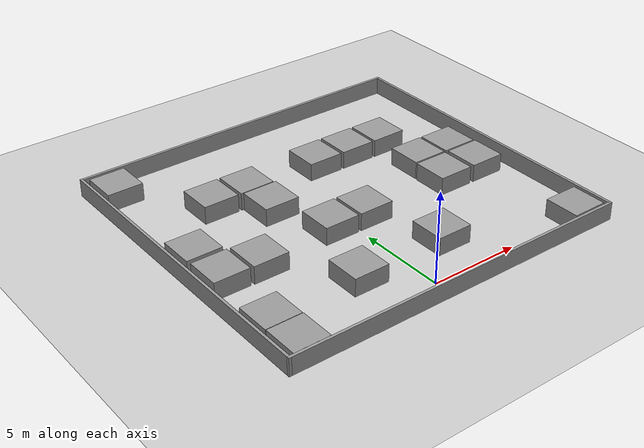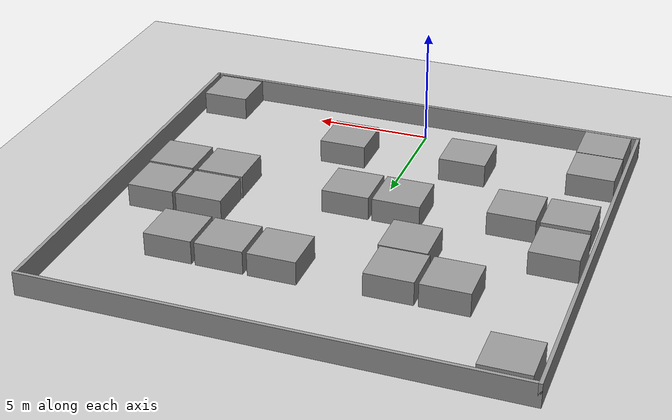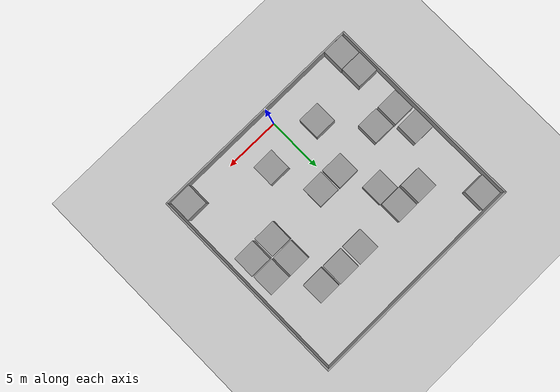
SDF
<sdf version="1.6">
 <world name="default">
  <light name="sun" type="directional">
   <pose>0 0 10 0 -0 0</pose>
   <diffuse>0.8 0.8 0.8 1</diffuse>
   <specular>0.2 0.2 0.2 1</specular>
   <attenuation>
    <range>1000</range>
    <constant>0.9</constant>
    <linear>0.01</linear>
    <quadratic>0.001</quadratic>
   </attenuation>
   <direction>-0.5 0.1 -0.9</direction>
  </light>
  <model name="ground_plane">
   <static>1</static>
   <link name="link">
    <collision name="collision">
     <geometry><plane><normal>0 0 1</normal><size>100 100</size></plane></geometry>
     <surface><friction><ode><mu>100</mu><mu2>50</mu2></ode></friction></surface>
    </collision>
    <visual name="visual">
     <cast_shadows>0</cast_shadows>
     <geometry><plane><normal>0 0 1</normal><size>100 100</size></plane></geometry>
     <material>
      <script><uri>file://media/materials/scripts/gazebo.material</uri><name>Gazebo/Grey</name></script>
     </material>
    </visual>
   </link>
  </model>
  <gravity>0 0 -9.8</gravity>
  <magnetic_field>6e-06 2.3e-05 -4.2e-05</magnetic_field>
  <atmosphere type="adiabatic"/>
  <physics name="default_physics" default="0" type="ode">
   <max_step_size>0.001</max_step_size>
   <real_time_factor>1</real_time_factor>
   <real_time_update_rate>1000</real_time_update_rate>
  </physics>
  <scene><ambient>0.4 0.4 0.4 1</ambient><background>0.7 0.7 0.7 1</background><shadows>1</shadows></scene>
  <spherical_coordinates>
   <surface_model>EARTH_WGS84</surface_model>
   <latitude_deg>0</latitude_deg>
   <longitude_deg>0</longitude_deg>
   <elevation>0</elevation>
   <heading_deg>0</heading_deg>
  </spherical_coordinates>
  <model name="map1">
   <pose>0.69437 8.013 0 0 -0 0</pose>
   <link name="Wall_0">
    <collision name="Wall_0_Collision">
     <geometry><box><size>20 0.15 1</size></box></geometry>
     <pose>0 0 0.5 0 -0 0</pose>
    </collision>
    <visual name="Wall_0_Visual">
     <pose>0 0 0.5 0 -0 0</pose>
     <geometry><box><size>20 0.15 1</size></box></geometry>
     <material>
      <script><uri>file://media/materials/scripts/gazebo.material</uri><name>Gazebo/Grey</name></script>
      <ambient>1 1 1 1</ambient>
     </material>
     <meta><layer>0</layer></meta>
    </visual>
    <pose>0 9.175 0 0 -0 0</pose>
   </link>
   <link name="Wall_3">
    <collision name="Wall_3_Collision">
     <geometry><box><size>18.5 0.15 1</size></box></geometry>
     <pose>0 0 0.5 0 -0 0</pose>
    </collision>
    <visual name="Wall_3_Visual">
     <pose>0 0 0.5 0 -0 0</pose>
     <geometry><box><size>18.5 0.15 1</size></box></geometry>
     <material>
      <script><uri>file://media/materials/scripts/gazebo.material</uri><name>Gazebo/Grey</name></script>
      <ambient>1 1 1 1</ambient>
     </material>
     <meta><layer>0</layer></meta>
    </visual>
    <pose>9.925 0 0 0 -0 -1.5708</pose>
   </link>
   <link name="Wall_4">
    <collision name="Wall_4_Collision">
     <geometry><box><size>20 0.15 1</size></box></geometry>
     <pose>0 0 0.5 0 -0 0</pose>
    </collision>
    <visual name="Wall_4_Visual">
     <pose>0 0 0.5 0 -0 0</pose>
     <geometry><box><size>20 0.15 1</size></box></geometry>
     <material>
      <script><uri>file://media/materials/scripts/gazebo.material</uri><name>Gazebo/Grey</name></script>
      <ambient>1 1 1 1</ambient>
     </material>
     <meta><layer>0</layer></meta>
    </visual>
    <pose>0 -9.175 0 0 -0 3.14159</pose>
   </link>
   <link name="Wall_5">
    <collision name="Wall_5_Collision">
     <geometry><box><size>18.5 0.15 1</size></box></geometry>
     <pose>0 0 0.5 0 -0 0</pose>
    </collision>
    <visual name="Wall_5_Visual">
     <pose>0 0 0.5 0 -0 0</pose>
     <geometry><box><size>18.5 0.15 1</size></box></geometry>
     <material>
      <script><uri>file://media/materials/scripts/gazebo.material</uri><name>Gazebo/Grey</name></script>
      <ambient>1 1 1 1</ambient>
     </material>
     <meta><layer>0</layer></meta>
    </visual>
    <pose>-9.925 0 0 0 -0 1.5708</pose>
   </link>
   <static>1</static>
  </model>
  <model name="box3">
   <link name="link_0">
    <inertial>
     <mass>200</mass>
     <inertia><ixx>83.3333</ixx><ixy>0</ixy><ixz>0</ixz><iyy>83.3333</iyy><iyz>0</iyz><izz>133.333</izz></inertia>
     <pose>0 0 1 0 -0 0</pose>
    </inertial>
    <visual name="visual">
     <geometry><box><size>2 2 1</size></box></geometry>
     <material>
      <lighting>1</lighting>
      <script><uri>file://media/materials/scripts/gazebo.material</uri><name>Gazebo/Grey</name></script>
      <shader type="pixel"><normal_map>__default__</normal_map></shader>
      <ambient>0.3 0.3 0.3 1</ambient>
      <diffuse>0.7 0.7 0.7 1</diffuse>
      <specular>0.01 0.01 0.01 1</specular>
      <emissive>0 0 0 1</emissive>
     </material>
    </visual>
    <collision name="collision">
     <geometry><box><size>2 2 1</size></box></geometry>
     <surface>
      <friction>
       <ode><mu>1</mu><mu2>1</mu2><fdir1>0 0 0</fdir1><slip1>0</slip1><slip2>0</slip2></ode>
       <torsional>
        <coefficient>1</coefficient>
        <patch_radius>0</patch_radius>
        <surface_radius>0</surface_radius>
        <use_patch_radius>1</use_patch_radius>
        <ode><slip>0</slip></ode>
       </torsional>
      </friction>
      <bounce><restitution_coefficient>0</restitution_coefficient><threshold>1e+06</threshold></bounce>
      <contact>
       <collide_without_contact>0</collide_without_contact>
       <collide_without_contact_bitmask>1</collide_without_contact_bitmask>
       <collide_bitmask>1</collide_bitmask>
       <ode>
        <soft_cfm>0</soft_cfm>
        <soft_erp>0.2</soft_erp>
        <kp>1e+13</kp>
        <kd>1</kd>
        <max_vel>0.01</max_vel>
        <min_depth>0</min_depth>
       </ode>
       <bullet>
        <split_impulse>1</split_impulse>
        <split_impulse_penetration_threshold>-0.01</split_impulse_penetration_threshold>
        <soft_cfm>0</soft_cfm>
        <soft_erp>0.2</soft_erp>
        <kp>1e+13</kp>
        <kd>1</kd>
       </bullet>
      </contact>
     </surface>
    </collision>
   </link>
   <static>0</static>
   <pose>-5.67874 6.13659 0.499997 -0 -3e-06 0.000145</pose>
  </model>
  <model name="box3_clone">
   <link name="link_0">
    <inertial>
     <mass>200</mass>
     <inertia><ixx>83.3333</ixx><ixy>0</ixy><ixz>0</ixz><iyy>83.3333</iyy><iyz>0</iyz><izz>133.333</izz></inertia>
     <pose>0 0 1 0 -0 0</pose>
    </inertial>
    <visual name="visual">
     <geometry><box><size>2 2 1</size></box></geometry>
     <material>
      <lighting>1</lighting>
      <script><uri>file://media/materials/scripts/gazebo.material</uri><name>Gazebo/Grey</name></script>
      <shader type="pixel"><normal_map>__default__</normal_map></shader>
      <ambient>0.3 0.3 0.3 1</ambient>
      <diffuse>0.7 0.7 0.7 1</diffuse>
      <specular>0.01 0.01 0.01 1</specular>
      <emissive>0 0 0 1</emissive>
     </material>
    </visual>
    <collision name="collision">
     <geometry><box><size>2 2 1</size></box></geometry>
     <surface>
      <friction>
       <ode><mu>1</mu><mu2>1</mu2><fdir1>0 0 0</fdir1><slip1>0</slip1><slip2>0</slip2></ode>
       <torsional>
        <coefficient>1</coefficient>
        <patch_radius>0</patch_radius>
        <surface_radius>0</surface_radius>
        <use_patch_radius>1</use_patch_radius>
        <ode><slip>0</slip></ode>
       </torsional>
      </friction>
      <bounce><restitution_coefficient>0</restitution_coefficient><threshold>1e+06</threshold></bounce>
      <contact>
       <collide_without_contact>0</collide_without_contact>
       <collide_without_contact_bitmask>1</collide_without_contact_bitmask>
       <collide_bitmask>1</collide_bitmask>
       <ode>
        <soft_cfm>0</soft_cfm>
        <soft_erp>0.2</soft_erp>
        <kp>1e+13</kp>
        <kd>1</kd>
        <max_vel>0.01</max_vel>
        <min_depth>0</min_depth>
       </ode>
       <bullet>
        <split_impulse>1</split_impulse>
        <split_impulse_penetration_threshold>-0.01</split_impulse_penetration_threshold>
        <soft_cfm>0</soft_cfm>
        <soft_erp>0.2</soft_erp>
        <kp>1e+13</kp>
        <kd>1</kd>
       </bullet>
      </contact>
     </surface>
    </collision>
   </link>
   <static>0</static>
   <pose>-2.62005 2.48056 0.499997 0 3e-06 0.000576</pose>
  </model>
  <model name="box3_clone_0">
   <link name="link_0">
    <inertial>
     <mass>200</mass>
     <inertia><ixx>83.3333</ixx><ixy>0</ixy><ixz>0</ixz><iyy>83.3333</iyy><iyz>0</iyz><izz>133.333</izz></inertia>
     <pose>0 0 1 0 -0 0</pose>
    </inertial>
    <visual name="visual">
     <geometry><box><size>2 2 1</size></box></geometry>
     <material>
      <lighting>1</lighting>
      <script><uri>file://media/materials/scripts/gazebo.material</uri><name>Gazebo/Grey</name></script>
      <shader type="pixel"><normal_map>__default__</normal_map></shader>
      <ambient>0.3 0.3 0.3 1</ambient>
      <diffuse>0.7 0.7 0.7 1</diffuse>
      <specular>0.01 0.01 0.01 1</specular>
      <emissive>0 0 0 1</emissive>
     </material>
    </visual>
    <collision name="collision">
     <geometry><box><size>2 2 1</size></box></geometry>
     <surface>
      <friction>
       <ode><mu>1</mu><mu2>1</mu2><fdir1>0 0 0</fdir1><slip1>0</slip1><slip2>0</slip2></ode>
       <torsional>
        <coefficient>1</coefficient>
        <patch_radius>0</patch_radius>
        <surface_radius>0</surface_radius>
        <use_patch_radius>1</use_patch_radius>
        <ode><slip>0</slip></ode>
       </torsional>
      </friction>
      <bounce><restitution_coefficient>0</restitution_coefficient><threshold>1e+06</threshold></bounce>
      <contact>
       <collide_without_contact>0</collide_without_contact>
       <collide_without_contact_bitmask>1</collide_without_contact_bitmask>
       <collide_bitmask>1</collide_bitmask>
       <ode>
        <soft_cfm>0</soft_cfm>
        <soft_erp>0.2</soft_erp>
        <kp>1e+13</kp>
        <kd>1</kd>
        <max_vel>0.01</max_vel>
        <min_depth>0</min_depth>
       </ode>
       <bullet>
        <split_impulse>1</split_impulse>
        <split_impulse_penetration_threshold>-0.01</split_impulse_penetration_threshold>
        <soft_cfm>0</soft_cfm>
        <soft_erp>0.2</soft_erp>
        <kp>1e+13</kp>
        <kd>1</kd>
       </bullet>
      </contact>
     </surface>
    </collision>
   </link>
   <static>0</static>
   <pose>-1.06654 6.66824 0.5 0 -0 0.000328</pose>
  </model>
  <model name="box3_clone_1">
   <link name="link_0">
    <inertial>
     <mass>200</mass>
     <inertia><ixx>83.3333</ixx><ixy>0</ixy><ixz>0</ixz><iyy>83.3333</iyy><iyz>0</iyz><izz>133.333</izz></inertia>
     <pose>0 0 1 0 -0 0</pose>
    </inertial>
    <visual name="visual">
     <geometry><box><size>2 2 1</size></box></geometry>
     <material>
      <lighting>1</lighting>
      <script><uri>file://media/materials/scripts/gazebo.material</uri><name>Gazebo/Grey</name></script>
      <shader type="pixel"><normal_map>__default__</normal_map></shader>
      <ambient>0.3 0.3 0.3 1</ambient>
      <diffuse>0.7 0.7 0.7 1</diffuse>
      <specular>0.01 0.01 0.01 1</specular>
      <emissive>0 0 0 1</emissive>
     </material>
    </visual>
    <collision name="collision">
     <geometry><box><size>2 2 1</size></box></geometry>
     <surface>
      <friction>
       <ode><mu>1</mu><mu2>1</mu2><fdir1>0 0 0</fdir1><slip1>0</slip1><slip2>0</slip2></ode>
       <torsional>
        <coefficient>1</coefficient>
        <patch_radius>0</patch_radius>
        <surface_radius>0</surface_radius>
        <use_patch_radius>1</use_patch_radius>
        <ode><slip>0</slip></ode>
       </torsional>
      </friction>
      <bounce><restitution_coefficient>0</restitution_coefficient><threshold>1e+06</threshold></bounce>
      <contact>
       <collide_without_contact>0</collide_without_contact>
       <collide_without_contact_bitmask>1</collide_without_contact_bitmask>
       <collide_bitmask>1</collide_bitmask>
       <ode>
        <soft_cfm>0</soft_cfm>
        <soft_erp>0.2</soft_erp>
        <kp>1e+13</kp>
        <kd>1</kd>
        <max_vel>0.01</max_vel>
        <min_depth>0</min_depth>
       </ode>
       <bullet>
        <split_impulse>1</split_impulse>
        <split_impulse_penetration_threshold>-0.01</split_impulse_penetration_threshold>
        <soft_cfm>0</soft_cfm>
        <soft_erp>0.2</soft_erp>
        <kp>1e+13</kp>
        <kd>1</kd>
       </bullet>
      </contact>
     </surface>
    </collision>
   </link>
   <static>0</static>
   <pose>6.57702 6.76181 0.5 0 -0 0.000407</pose>
  </model>
  <model name="box3_clone_2">
   <link name="link_0">
    <inertial>
     <mass>200</mass>
     <inertia><ixx>83.3333</ixx><ixy>0</ixy><ixz>0</ixz><iyy>83.3333</iyy><iyz>0</iyz><izz>133.333</izz></inertia>
     <pose>0 0 1 0 -0 0</pose>
    </inertial>
    <visual name="visual">
     <geometry><box><size>2 2 1</size></box></geometry>
     <material>
      <lighting>1</lighting>
      <script><uri>file://media/materials/scripts/gazebo.material</uri><name>Gazebo/Grey</name></script>
      <shader type="pixel"><normal_map>__default__</normal_map></shader>
      <ambient>0.3 0.3 0.3 1</ambient>
      <diffuse>0.7 0.7 0.7 1</diffuse>
      <specular>0.01 0.01 0.01 1</specular>
      <emissive>0 0 0 1</emissive>
     </material>
    </visual>
    <collision name="collision">
     <geometry><box><size>2 2 1</size></box></geometry>
     <surface>
      <friction>
       <ode><mu>1</mu><mu2>1</mu2><fdir1>0 0 0</fdir1><slip1>0</slip1><slip2>0</slip2></ode>
       <torsional>
        <coefficient>1</coefficient>
        <patch_radius>0</patch_radius>
        <surface_radius>0</surface_radius>
        <use_patch_radius>1</use_patch_radius>
        <ode><slip>0</slip></ode>
       </torsional>
      </friction>
      <bounce><restitution_coefficient>0</restitution_coefficient><threshold>1e+06</threshold></bounce>
      <contact>
       <collide_without_contact>0</collide_without_contact>
       <collide_without_contact_bitmask>1</collide_without_contact_bitmask>
       <collide_bitmask>1</collide_bitmask>
       <ode>
        <soft_cfm>0</soft_cfm>
        <soft_erp>0.2</soft_erp>
        <kp>1e+13</kp>
        <kd>1</kd>
        <max_vel>0.01</max_vel>
        <min_depth>0</min_depth>
       </ode>
       <bullet>
        <split_impulse>1</split_impulse>
        <split_impulse_penetration_threshold>-0.01</split_impulse_penetration_threshold>
        <soft_cfm>0</soft_cfm>
        <soft_erp>0.2</soft_erp>
        <kp>1e+13</kp>
        <kd>1</kd>
       </bullet>
      </contact>
     </surface>
    </collision>
   </link>
   <static>0</static>
   <pose>8.80934 6.76409 0.499997 0 3e-06 0.000301</pose>
  </model>
  <model name="box3_clone_3">
   <link name="link_0">
    <inertial>
     <mass>200</mass>
     <inertia><ixx>83.3333</ixx><ixy>0</ixy><ixz>0</ixz><iyy>83.3333</iyy><iyz>0</iyz><izz>133.333</izz></inertia>
     <pose>0 0 1 0 -0 0</pose>
    </inertial>
    <visual name="visual">
     <geometry><box><size>2 2 1</size></box></geometry>
     <material>
      <lighting>1</lighting>
      <script><uri>file://media/materials/scripts/gazebo.material</uri><name>Gazebo/Grey</name></script>
      <shader type="pixel"><normal_map>__default__</normal_map></shader>
      <ambient>0.3 0.3 0.3 1</ambient>
      <diffuse>0.7 0.7 0.7 1</diffuse>
      <specular>0.01 0.01 0.01 1</specular>
      <emissive>0 0 0 1</emissive>
     </material>
    </visual>
    <collision name="collision">
     <geometry><box><size>2 2 1</size></box></geometry>
     <surface>
      <friction>
       <ode><mu>1</mu><mu2>1</mu2><fdir1>0 0 0</fdir1><slip1>0</slip1><slip2>0</slip2></ode>
       <torsional>
        <coefficient>1</coefficient>
        <patch_radius>0</patch_radius>
        <surface_radius>0</surface_radius>
        <use_patch_radius>1</use_patch_radius>
        <ode><slip>0</slip></ode>
       </torsional>
      </friction>
      <bounce><restitution_coefficient>0</restitution_coefficient><threshold>1e+06</threshold></bounce>
      <contact>
       <collide_without_contact>0</collide_without_contact>
       <collide_without_contact_bitmask>1</collide_without_contact_bitmask>
       <collide_bitmask>1</collide_bitmask>
       <ode>
        <soft_cfm>0</soft_cfm>
        <soft_erp>0.2</soft_erp>
        <kp>1e+13</kp>
        <kd>1</kd>
        <max_vel>0.01</max_vel>
        <min_depth>0</min_depth>
       </ode>
       <bullet>
        <split_impulse>1</split_impulse>
        <split_impulse_penetration_threshold>-0.01</split_impulse_penetration_threshold>
        <soft_cfm>0</soft_cfm>
        <soft_erp>0.2</soft_erp>
        <kp>1e+13</kp>
        <kd>1</kd>
       </bullet>
      </contact>
     </surface>
    </collision>
   </link>
   <static>0</static>
   <pose>6.6 8.87776 0.5 0 -0 0.000519</pose>
  </model>
  <model name="box3_clone_4">
   <link name="link_0">
    <inertial>
     <mass>200</mass>
     <inertia><ixx>83.3333</ixx><ixy>0</ixy><ixz>0</ixz><iyy>83.3333</iyy><iyz>0</iyz><izz>133.333</izz></inertia>
     <pose>0 0 1 0 -0 0</pose>
    </inertial>
    <visual name="visual">
     <geometry><box><size>2 2 1</size></box></geometry>
     <material>
      <lighting>1</lighting>
      <script><uri>file://media/materials/scripts/gazebo.material</uri><name>Gazebo/Grey</name></script>
      <shader type="pixel"><normal_map>__default__</normal_map></shader>
      <ambient>0.3 0.3 0.3 1</ambient>
      <diffuse>0.7 0.7 0.7 1</diffuse>
      <specular>0.01 0.01 0.01 1</specular>
      <emissive>0 0 0 1</emissive>
     </material>
    </visual>
    <collision name="collision">
     <geometry><box><size>2 2 1</size></box></geometry>
     <surface>
      <friction>
       <ode><mu>1</mu><mu2>1</mu2><fdir1>0 0 0</fdir1><slip1>0</slip1><slip2>0</slip2></ode>
       <torsional>
        <coefficient>1</coefficient>
        <patch_radius>0</patch_radius>
        <surface_radius>0</surface_radius>
        <use_patch_radius>1</use_patch_radius>
        <ode><slip>0</slip></ode>
       </torsional>
      </friction>
      <bounce><restitution_coefficient>0</restitution_coefficient><threshold>1e+06</threshold></bounce>
      <contact>
       <collide_without_contact>0</collide_without_contact>
       <collide_without_contact_bitmask>1</collide_without_contact_bitmask>
       <collide_bitmask>1</collide_bitmask>
       <ode>
        <soft_cfm>0</soft_cfm>
        <soft_erp>0.2</soft_erp>
        <kp>1e+13</kp>
        <kd>1</kd>
        <max_vel>0.01</max_vel>
        <min_depth>0</min_depth>
       </ode>
       <bullet>
        <split_impulse>1</split_impulse>
        <split_impulse_penetration_threshold>-0.01</split_impulse_penetration_threshold>
        <soft_cfm>0</soft_cfm>
        <soft_erp>0.2</soft_erp>
        <kp>1e+13</kp>
        <kd>1</kd>
       </bullet>
      </contact>
     </surface>
    </collision>
   </link>
   <static>0</static>
   <pose>8.73819 8.86785 0.5 0 -0 0.000325</pose>
  </model>
  <model name="box3_clone_6">
   <link name="link_0">
    <inertial>
     <mass>200</mass>
     <inertia><ixx>83.3333</ixx><ixy>0</ixy><ixz>0</ixz><iyy>83.3333</iyy><iyz>0</iyz><izz>133.333</izz></inertia>
     <pose>0 0 1 0 -0 0</pose>
    </inertial>
    <visual name="visual">
     <geometry><box><size>2 2 1</size></box></geometry>
     <material>
      <lighting>1</lighting>
      <script><uri>file://media/materials/scripts/gazebo.material</uri><name>Gazebo/Grey</name></script>
      <shader type="pixel"><normal_map>__default__</normal_map></shader>
      <ambient>0.3 0.3 0.3 1</ambient>
      <diffuse>0.7 0.7 0.7 1</diffuse>
      <specular>0.01 0.01 0.01 1</specular>
      <emissive>0 0 0 1</emissive>
     </material>
    </visual>
    <collision name="collision">
     <geometry><box><size>2 2 1</size></box></geometry>
     <surface>
      <friction>
       <ode><mu>1</mu><mu2>1</mu2><fdir1>0 0 0</fdir1><slip1>0</slip1><slip2>0</slip2></ode>
       <torsional>
        <coefficient>1</coefficient>
        <patch_radius>0</patch_radius>
        <surface_radius>0</surface_radius>
        <use_patch_radius>1</use_patch_radius>
        <ode><slip>0</slip></ode>
       </torsional>
      </friction>
      <bounce><restitution_coefficient>0</restitution_coefficient><threshold>1e+06</threshold></bounce>
      <contact>
       <collide_without_contact>0</collide_without_contact>
       <collide_without_contact_bitmask>1</collide_without_contact_bitmask>
       <collide_bitmask>1</collide_bitmask>
       <ode>
        <soft_cfm>0</soft_cfm>
        <soft_erp>0.2</soft_erp>
        <kp>1e+13</kp>
        <kd>1</kd>
        <max_vel>0.01</max_vel>
        <min_depth>0</min_depth>
       </ode>
       <bullet>
        <split_impulse>1</split_impulse>
        <split_impulse_penetration_threshold>-0.01</split_impulse_penetration_threshold>
        <soft_cfm>0</soft_cfm>
        <soft_erp>0.2</soft_erp>
        <kp>1e+13</kp>
        <kd>1</kd>
       </bullet>
      </contact>
     </surface>
    </collision>
   </link>
   <static>0</static>
   <pose>-7.90468 8.4224 0.499997 -0 -3e-06 0.000514</pose>
  </model>
  <model name="box3_clone_7">
   <link name="link_0">
    <inertial>
     <mass>200</mass>
     <inertia><ixx>83.3333</ixx><ixy>0</ixy><ixz>0</ixz><iyy>83.3333</iyy><iyz>0</iyz><izz>133.333</izz></inertia>
     <pose>0 0 1 0 -0 0</pose>
    </inertial>
    <visual name="visual">
     <geometry><box><size>2 2 1</size></box></geometry>
     <material>
      <lighting>1</lighting>
      <script><uri>file://media/materials/scripts/gazebo.material</uri><name>Gazebo/Grey</name></script>
      <shader type="pixel"><normal_map>__default__</normal_map></shader>
      <ambient>0.3 0.3 0.3 1</ambient>
      <diffuse>0.7 0.7 0.7 1</diffuse>
      <specular>0.01 0.01 0.01 1</specular>
      <emissive>0 0 0 1</emissive>
     </material>
    </visual>
    <collision name="collision">
     <geometry><box><size>2 2 1</size></box></geometry>
     <surface>
      <friction>
       <ode><mu>1</mu><mu2>1</mu2><fdir1>0 0 0</fdir1><slip1>0</slip1><slip2>0</slip2></ode>
       <torsional>
        <coefficient>1</coefficient>
        <patch_radius>0</patch_radius>
        <surface_radius>0</surface_radius>
        <use_patch_radius>1</use_patch_radius>
        <ode><slip>0</slip></ode>
       </torsional>
      </friction>
      <bounce><restitution_coefficient>0</restitution_coefficient><threshold>1e+06</threshold></bounce>
      <contact>
       <collide_without_contact>0</collide_without_contact>
       <collide_without_contact_bitmask>1</collide_without_contact_bitmask>
       <collide_bitmask>1</collide_bitmask>
       <ode>
        <soft_cfm>0</soft_cfm>
        <soft_erp>0.2</soft_erp>
        <kp>1e+13</kp>
        <kd>1</kd>
        <max_vel>0.01</max_vel>
        <min_depth>0</min_depth>
       </ode>
       <bullet>
        <split_impulse>1</split_impulse>
        <split_impulse_penetration_threshold>-0.01</split_impulse_penetration_threshold>
        <soft_cfm>0</soft_cfm>
        <soft_erp>0.2</soft_erp>
        <kp>1e+13</kp>
        <kd>1</kd>
       </bullet>
      </contact>
     </surface>
    </collision>
   </link>
   <static>0</static>
   <pose>-7.85416 6.17188 0.499997 -0 -3e-06 0.000297</pose>
  </model>
  <model name="box3_clone_8">
   <link name="link_0">
    <inertial>
     <mass>200</mass>
     <inertia><ixx>83.3333</ixx><ixy>0</ixy><ixz>0</ixz><iyy>83.3333</iyy><iyz>0</iyz><izz>133.333</izz></inertia>
     <pose>0 0 1 0 -0 0</pose>
    </inertial>
    <visual name="visual">
     <geometry><box><size>2 2 1</size></box></geometry>
     <material>
      <lighting>1</lighting>
      <script><uri>file://media/materials/scripts/gazebo.material</uri><name>Gazebo/Grey</name></script>
      <shader type="pixel"><normal_map>__default__</normal_map></shader>
      <ambient>0.3 0.3 0.3 1</ambient>
      <diffuse>0.7 0.7 0.7 1</diffuse>
      <specular>0.01 0.01 0.01 1</specular>
      <emissive>0 0 0 1</emissive>
     </material>
    </visual>
    <collision name="collision">
     <geometry><box><size>2 2 1</size></box></geometry>
     <surface>
      <friction>
       <ode><mu>1</mu><mu2>1</mu2><fdir1>0 0 0</fdir1><slip1>0</slip1><slip2>0</slip2></ode>
       <torsional>
        <coefficient>1</coefficient>
        <patch_radius>0</patch_radius>
        <surface_radius>0</surface_radius>
        <use_patch_radius>1</use_patch_radius>
        <ode><slip>0</slip></ode>
       </torsional>
      </friction>
      <bounce><restitution_coefficient>0</restitution_coefficient><threshold>1e+06</threshold></bounce>
      <contact>
       <collide_without_contact>0</collide_without_contact>
       <collide_without_contact_bitmask>1</collide_without_contact_bitmask>
       <collide_bitmask>1</collide_bitmask>
       <ode>
        <soft_cfm>0</soft_cfm>
        <soft_erp>0.2</soft_erp>
        <kp>1e+13</kp>
        <kd>1</kd>
        <max_vel>0.01</max_vel>
        <min_depth>0</min_depth>
       </ode>
       <bullet>
        <split_impulse>1</split_impulse>
        <split_impulse_penetration_threshold>-0.01</split_impulse_penetration_threshold>
        <soft_cfm>0</soft_cfm>
        <soft_erp>0.2</soft_erp>
        <kp>1e+13</kp>
        <kd>1</kd>
       </bullet>
      </contact>
     </surface>
    </collision>
   </link>
   <static>0</static>
   <pose>2.07111 12.1225 0.5 0 -0 0.000337</pose>
  </model>
  <model name="box3_clone_9">
   <link name="link_0">
    <inertial>
     <mass>200</mass>
     <inertia><ixx>83.3333</ixx><ixy>0</ixy><ixz>0</ixz><iyy>83.3333</iyy><iyz>0</iyz><izz>133.333</izz></inertia>
     <pose>0 0 1 0 -0 0</pose>
    </inertial>
    <visual name="visual">
     <geometry><box><size>2 2 1</size></box></geometry>
     <material>
      <lighting>1</lighting>
      <script><uri>file://media/materials/scripts/gazebo.material</uri><name>Gazebo/Grey</name></script>
      <shader type="pixel"><normal_map>__default__</normal_map></shader>
      <ambient>0.3 0.3 0.3 1</ambient>
      <diffuse>0.7 0.7 0.7 1</diffuse>
      <specular>0.01 0.01 0.01 1</specular>
      <emissive>0 0 0 1</emissive>
     </material>
    </visual>
    <collision name="collision">
     <geometry><box><size>2 2 1</size></box></geometry>
     <surface>
      <friction>
       <ode><mu>1</mu><mu2>1</mu2><fdir1>0 0 0</fdir1><slip1>0</slip1><slip2>0</slip2></ode>
       <torsional>
        <coefficient>1</coefficient>
        <patch_radius>0</patch_radius>
        <surface_radius>0</surface_radius>
        <use_patch_radius>1</use_patch_radius>
        <ode><slip>0</slip></ode>
       </torsional>
      </friction>
      <bounce><restitution_coefficient>0</restitution_coefficient><threshold>1e+06</threshold></bounce>
      <contact>
       <collide_without_contact>0</collide_without_contact>
       <collide_without_contact_bitmask>1</collide_without_contact_bitmask>
       <collide_bitmask>1</collide_bitmask>
       <ode>
        <soft_cfm>0</soft_cfm>
        <soft_erp>0.2</soft_erp>
        <kp>1e+13</kp>
        <kd>1</kd>
        <max_vel>0.01</max_vel>
        <min_depth>0</min_depth>
       </ode>
       <bullet>
        <split_impulse>1</split_impulse>
        <split_impulse_penetration_threshold>-0.01</split_impulse_penetration_threshold>
        <soft_cfm>0</soft_cfm>
        <soft_erp>0.2</soft_erp>
        <kp>1e+13</kp>
        <kd>1</kd>
       </bullet>
      </contact>
     </surface>
    </collision>
   </link>
   <static>0</static>
   <pose>1.09364 6.66456 0.499997 0 -3e-06 0.000294</pose>
  </model>
  <model name="box3_clone_10">
   <link name="link_0">
    <inertial>
     <mass>200</mass>
     <inertia><ixx>83.3333</ixx><ixy>0</ixy><ixz>0</ixz><iyy>83.3333</iyy><iyz>0</iyz><izz>133.333</izz></inertia>
     <pose>0 0 1 0 -0 0</pose>
    </inertial>
    <visual name="visual">
     <geometry><box><size>2 2 1</size></box></geometry>
     <material>
      <lighting>1</lighting>
      <script><uri>file://media/materials/scripts/gazebo.material</uri><name>Gazebo/Grey</name></script>
      <shader type="pixel"><normal_map>__default__</normal_map></shader>
      <ambient>0.3 0.3 0.3 1</ambient>
      <diffuse>0.7 0.7 0.7 1</diffuse>
      <specular>0.01 0.01 0.01 1</specular>
      <emissive>0 0 0 1</emissive>
     </material>
    </visual>
    <collision name="collision">
     <geometry><box><size>2 2 1</size></box></geometry>
     <surface>
      <friction>
       <ode><mu>1</mu><mu2>1</mu2><fdir1>0 0 0</fdir1><slip1>0</slip1><slip2>0</slip2></ode>
       <torsional>
        <coefficient>1</coefficient>
        <patch_radius>0</patch_radius>
        <surface_radius>0</surface_radius>
        <use_patch_radius>1</use_patch_radius>
        <ode><slip>0</slip></ode>
       </torsional>
      </friction>
      <bounce><restitution_coefficient>0</restitution_coefficient><threshold>1e+06</threshold></bounce>
      <contact>
       <collide_without_contact>0</collide_without_contact>
       <collide_without_contact_bitmask>1</collide_without_contact_bitmask>
       <collide_bitmask>1</collide_bitmask>
       <ode>
        <soft_cfm>0</soft_cfm>
        <soft_erp>0.2</soft_erp>
        <kp>1e+13</kp>
        <kd>1</kd>
        <max_vel>0.01</max_vel>
        <min_depth>0</min_depth>
       </ode>
       <bullet>
        <split_impulse>1</split_impulse>
        <split_impulse_penetration_threshold>-0.01</split_impulse_penetration_threshold>
        <soft_cfm>0</soft_cfm>
        <soft_erp>0.2</soft_erp>
        <kp>1e+13</kp>
        <kd>1</kd>
       </bullet>
      </contact>
     </surface>
    </collision>
   </link>
   <static>0</static>
   <pose>2.67084 2.61651 0.499997 -0 -3e-06 0.000297</pose>
  </model>
  <model name="box3_clone_11">
   <link name="link_0">
    <inertial>
     <mass>200</mass>
     <inertia><ixx>83.3333</ixx><ixy>0</ixy><ixz>0</ixz><iyy>83.3333</iyy><iyz>0</iyz><izz>133.333</izz></inertia>
     <pose>0 0 1 0 -0 0</pose>
    </inertial>
    <visual name="visual">
     <geometry><box><size>2 2 1</size></box></geometry>
     <material>
      <lighting>1</lighting>
      <script><uri>file://media/materials/scripts/gazebo.material</uri><name>Gazebo/Grey</name></script>
      <shader type="pixel"><normal_map>__default__</normal_map></shader>
      <ambient>0.3 0.3 0.3 1</ambient>
      <diffuse>0.7 0.7 0.7 1</diffuse>
      <specular>0.01 0.01 0.01 1</specular>
      <emissive>0 0 0 1</emissive>
     </material>
    </visual>
    <collision name="collision">
     <geometry><box><size>2 2 1</size></box></geometry>
     <surface>
      <friction>
       <ode><mu>1</mu><mu2>1</mu2><fdir1>0 0 0</fdir1><slip1>0</slip1><slip2>0</slip2></ode>
       <torsional>
        <coefficient>1</coefficient>
        <patch_radius>0</patch_radius>
        <surface_radius>0</surface_radius>
        <use_patch_radius>1</use_patch_radius>
        <ode><slip>0</slip></ode>
       </torsional>
      </friction>
      <bounce><restitution_coefficient>0</restitution_coefficient><threshold>1e+06</threshold></bounce>
      <contact>
       <collide_without_contact>0</collide_without_contact>
       <collide_without_contact_bitmask>1</collide_without_contact_bitmask>
       <collide_bitmask>1</collide_bitmask>
       <ode>
        <soft_cfm>0</soft_cfm>
        <soft_erp>0.2</soft_erp>
        <kp>1e+13</kp>
        <kd>1</kd>
        <max_vel>0.01</max_vel>
        <min_depth>0</min_depth>
       </ode>
       <bullet>
        <split_impulse>1</split_impulse>
        <split_impulse_penetration_threshold>-0.01</split_impulse_penetration_threshold>
        <soft_cfm>0</soft_cfm>
        <soft_erp>0.2</soft_erp>
        <kp>1e+13</kp>
        <kd>1</kd>
       </bullet>
      </contact>
     </surface>
    </collision>
   </link>
   <static>0</static>
   <pose>4.25056 12.1165 0.5 0 -0 0.000309</pose>
  </model>
  <model name="box3_clone_8_clone">
   <link name="link_0">
    <inertial>
     <mass>200</mass>
     <inertia><ixx>83.3333</ixx><ixy>0</ixy><ixz>0</ixz><iyy>83.3333</iyy><iyz>0</iyz><izz>133.333</izz></inertia>
     <pose>0 0 1 0 -0 0</pose>
    </inertial>
    <visual name="visual">
     <geometry><box><size>2 2 1</size></box></geometry>
     <material>
      <lighting>1</lighting>
      <script><uri>file://media/materials/scripts/gazebo.material</uri><name>Gazebo/Grey</name></script>
      <shader type="pixel"><normal_map>__default__</normal_map></shader>
      <ambient>0.3 0.3 0.3 1</ambient>
      <diffuse>0.7 0.7 0.7 1</diffuse>
      <specular>0.01 0.01 0.01 1</specular>
      <emissive>0 0 0 1</emissive>
     </material>
    </visual>
    <collision name="collision">
     <geometry><box><size>2 2 1</size></box></geometry>
     <surface>
      <friction>
       <ode><mu>1</mu><mu2>1</mu2><fdir1>0 0 0</fdir1><slip1>0</slip1><slip2>0</slip2></ode>
       <torsional>
        <coefficient>1</coefficient>
        <patch_radius>0</patch_radius>
        <surface_radius>0</surface_radius>
        <use_patch_radius>1</use_patch_radius>
        <ode><slip>0</slip></ode>
       </torsional>
      </friction>
      <bounce><restitution_coefficient>0</restitution_coefficient><threshold>1e+06</threshold></bounce>
      <contact>
       <collide_without_contact>0</collide_without_contact>
       <collide_without_contact_bitmask>1</collide_without_contact_bitmask>
       <collide_bitmask>1</collide_bitmask>
       <ode>
        <soft_cfm>0</soft_cfm>
        <soft_erp>0.2</soft_erp>
        <kp>1e+13</kp>
        <kd>1</kd>
        <max_vel>0.01</max_vel>
        <min_depth>0</min_depth>
       </ode>
       <bullet>
        <split_impulse>1</split_impulse>
        <split_impulse_penetration_threshold>-0.01</split_impulse_penetration_threshold>
        <soft_cfm>0</soft_cfm>
        <soft_erp>0.2</soft_erp>
        <kp>1e+13</kp>
        <kd>1</kd>
       </bullet>
      </contact>
     </surface>
    </collision>
   </link>
   <static>0</static>
   <pose>-2.50794 11.9315 0.499997 0 -3e-06 0.000345</pose>
  </model>
  <model name="box3_clone_8_clone_0">
   <link name="link_0">
    <inertial>
     <mass>200</mass>
     <inertia><ixx>83.3333</ixx><ixy>0</ixy><ixz>0</ixz><iyy>83.3333</iyy><iyz>0</iyz><izz>133.333</izz></inertia>
     <pose>0 0 1 0 -0 0</pose>
    </inertial>
    <visual name="visual">
     <geometry><box><size>2 2 1</size></box></geometry>
     <material>
      <lighting>1</lighting>
      <script><uri>file://media/materials/scripts/gazebo.material</uri><name>Gazebo/Grey</name></script>
      <shader type="pixel"><normal_map>__default__</normal_map></shader>
      <ambient>0.3 0.3 0.3 1</ambient>
      <diffuse>0.7 0.7 0.7 1</diffuse>
      <specular>0.01 0.01 0.01 1</specular>
      <emissive>0 0 0 1</emissive>
     </material>
    </visual>
    <collision name="collision">
     <geometry><box><size>2 2 1</size></box></geometry>
     <surface>
      <friction>
       <ode><mu>1</mu><mu2>1</mu2><fdir1>0 0 0</fdir1><slip1>0</slip1><slip2>0</slip2></ode>
       <torsional>
        <coefficient>1</coefficient>
        <patch_radius>0</patch_radius>
        <surface_radius>0</surface_radius>
        <use_patch_radius>1</use_patch_radius>
        <ode><slip>0</slip></ode>
       </torsional>
      </friction>
      <bounce><restitution_coefficient>0</restitution_coefficient><threshold>1e+06</threshold></bounce>
      <contact>
       <collide_without_contact>0</collide_without_contact>
       <collide_without_contact_bitmask>1</collide_without_contact_bitmask>
       <collide_bitmask>1</collide_bitmask>
       <ode>
        <soft_cfm>0</soft_cfm>
        <soft_erp>0.2</soft_erp>
        <kp>1e+13</kp>
        <kd>1</kd>
        <max_vel>0.01</max_vel>
        <min_depth>0</min_depth>
       </ode>
       <bullet>
        <split_impulse>1</split_impulse>
        <split_impulse_penetration_threshold>-0.01</split_impulse_penetration_threshold>
        <soft_cfm>0</soft_cfm>
        <soft_erp>0.2</soft_erp>
        <kp>1e+13</kp>
        <kd>1</kd>
       </bullet>
      </contact>
     </surface>
    </collision>
   </link>
   <static>0</static>
   <pose>-2.39481 9.8776 0.5 0 -0 0.000331</pose>
  </model>
  <model name="box3_clone_8_clone_clone">
   <link name="link_0">
    <inertial>
     <mass>200</mass>
     <inertia><ixx>83.3333</ixx><ixy>0</ixy><ixz>0</ixz><iyy>83.3333</iyy><iyz>0</iyz><izz>133.333</izz></inertia>
     <pose>0 0 1 0 -0 0</pose>
    </inertial>
    <visual name="visual">
     <geometry><box><size>2 2 1</size></box></geometry>
     <material>
      <lighting>1</lighting>
      <script><uri>file://media/materials/scripts/gazebo.material</uri><name>Gazebo/Grey</name></script>
      <shader type="pixel"><normal_map>__default__</normal_map></shader>
      <ambient>0.3 0.3 0.3 1</ambient>
      <diffuse>0.7 0.7 0.7 1</diffuse>
      <specular>0.01 0.01 0.01 1</specular>
      <emissive>0 0 0 1</emissive>
     </material>
    </visual>
    <collision name="collision">
     <geometry><box><size>2 2 1</size></box></geometry>
     <surface>
      <friction>
       <ode><mu>1</mu><mu2>1</mu2><fdir1>0 0 0</fdir1><slip1>0</slip1><slip2>0</slip2></ode>
       <torsional>
        <coefficient>1</coefficient>
        <patch_radius>0</patch_radius>
        <surface_radius>0</surface_radius>
        <use_patch_radius>1</use_patch_radius>
        <ode><slip>0</slip></ode>
       </torsional>
      </friction>
      <bounce><restitution_coefficient>0</restitution_coefficient><threshold>1e+06</threshold></bounce>
      <contact>
       <collide_without_contact>0</collide_without_contact>
       <collide_without_contact_bitmask>1</collide_without_contact_bitmask>
       <collide_bitmask>1</collide_bitmask>
       <ode>
        <soft_cfm>0</soft_cfm>
        <soft_erp>0.2</soft_erp>
        <kp>1e+13</kp>
        <kd>1</kd>
        <max_vel>0.01</max_vel>
        <min_depth>0</min_depth>
       </ode>
       <bullet>
        <split_impulse>1</split_impulse>
        <split_impulse_penetration_threshold>-0.01</split_impulse_penetration_threshold>
        <soft_cfm>0</soft_cfm>
        <soft_erp>0.2</soft_erp>
        <kp>1e+13</kp>
        <kd>1</kd>
       </bullet>
      </contact>
     </surface>
    </collision>
   </link>
   <static>0</static>
   <pose>-4.68143 11.9342 0.5 0 -0 0.000344</pose>
  </model>
  <model name="box3_clone_8_clone_clone_0">
   <link name="link_0">
    <inertial>
     <mass>200</mass>
     <inertia><ixx>83.3333</ixx><ixy>0</ixy><ixz>0</ixz><iyy>83.3333</iyy><iyz>0</iyz><izz>133.333</izz></inertia>
     <pose>0 0 1 0 -0 0</pose>
    </inertial>
    <visual name="visual">
     <geometry><box><size>2 2 1</size></box></geometry>
     <material>
      <lighting>1</lighting>
      <script><uri>file://media/materials/scripts/gazebo.material</uri><name>Gazebo/Grey</name></script>
      <shader type="pixel"><normal_map>__default__</normal_map></shader>
      <ambient>0.3 0.3 0.3 1</ambient>
      <diffuse>0.7 0.7 0.7 1</diffuse>
      <specular>0.01 0.01 0.01 1</specular>
      <emissive>0 0 0 1</emissive>
     </material>
    </visual>
    <collision name="collision">
     <geometry><box><size>2 2 1</size></box></geometry>
     <surface>
      <friction>
       <ode><mu>1</mu><mu2>1</mu2><fdir1>0 0 0</fdir1><slip1>0</slip1><slip2>0</slip2></ode>
       <torsional>
        <coefficient>1</coefficient>
        <patch_radius>0</patch_radius>
        <surface_radius>0</surface_radius>
        <use_patch_radius>1</use_patch_radius>
        <ode><slip>0</slip></ode>
       </torsional>
      </friction>
      <bounce><restitution_coefficient>0</restitution_coefficient><threshold>1e+06</threshold></bounce>
      <contact>
       <collide_without_contact>0</collide_without_contact>
       <collide_without_contact_bitmask>1</collide_without_contact_bitmask>
       <collide_bitmask>1</collide_bitmask>
       <ode>
        <soft_cfm>0</soft_cfm>
        <soft_erp>0.2</soft_erp>
        <kp>1e+13</kp>
        <kd>1</kd>
        <max_vel>0.01</max_vel>
        <min_depth>0</min_depth>
       </ode>
       <bullet>
        <split_impulse>1</split_impulse>
        <split_impulse_penetration_threshold>-0.01</split_impulse_penetration_threshold>
        <soft_cfm>0</soft_cfm>
        <soft_erp>0.2</soft_erp>
        <kp>1e+13</kp>
        <kd>1</kd>
       </bullet>
      </contact>
     </surface>
    </collision>
   </link>
   <static>0</static>
   <pose>-7.92247 15.9259 0.499997 0 -3e-06 0.000343</pose>
  </model>
  <model name="box3_clone_8_clone_clone_1">
   <link name="link_0">
    <inertial>
     <mass>200</mass>
     <inertia><ixx>83.3333</ixx><ixy>0</ixy><ixz>0</ixz><iyy>83.3333</iyy><iyz>0</iyz><izz>133.333</izz></inertia>
     <pose>0 0 1 0 -0 0</pose>
    </inertial>
    <visual name="visual">
     <geometry><box><size>2 2 1</size></box></geometry>
     <material>
      <lighting>1</lighting>
      <script><uri>file://media/materials/scripts/gazebo.material</uri><name>Gazebo/Grey</name></script>
      <shader type="pixel"><normal_map>__default__</normal_map></shader>
      <ambient>0.3 0.3 0.3 1</ambient>
      <diffuse>0.7 0.7 0.7 1</diffuse>
      <specular>0.01 0.01 0.01 1</specular>
      <emissive>0 0 0 1</emissive>
     </material>
    </visual>
    <collision name="collision">
     <geometry><box><size>2 2 1</size></box></geometry>
     <surface>
      <friction>
       <ode><mu>1</mu><mu2>1</mu2><fdir1>0 0 0</fdir1><slip1>0</slip1><slip2>0</slip2></ode>
       <torsional>
        <coefficient>1</coefficient>
        <patch_radius>0</patch_radius>
        <surface_radius>0</surface_radius>
        <use_patch_radius>1</use_patch_radius>
        <ode><slip>0</slip></ode>
       </torsional>
      </friction>
      <bounce><restitution_coefficient>0</restitution_coefficient><threshold>1e+06</threshold></bounce>
      <contact>
       <collide_without_contact>0</collide_without_contact>
       <collide_without_contact_bitmask>1</collide_without_contact_bitmask>
       <collide_bitmask>1</collide_bitmask>
       <ode>
        <soft_cfm>0</soft_cfm>
        <soft_erp>0.2</soft_erp>
        <kp>1e+13</kp>
        <kd>1</kd>
        <max_vel>0.01</max_vel>
        <min_depth>0</min_depth>
       </ode>
       <bullet>
        <split_impulse>1</split_impulse>
        <split_impulse_penetration_threshold>-0.01</split_impulse_penetration_threshold>
        <soft_cfm>0</soft_cfm>
        <soft_erp>0.2</soft_erp>
        <kp>1e+13</kp>
        <kd>1</kd>
       </bullet>
      </contact>
     </surface>
    </collision>
   </link>
   <static>0</static>
   <pose>6.40576 12.1052 0.5 0 -0 0.000342</pose>
  </model>
  <model name="box3_clone_4_clone">
   <link name="link_0">
    <inertial>
     <mass>200</mass>
     <inertia><ixx>83.3333</ixx><ixy>0</ixy><ixz>0</ixz><iyy>83.3333</iyy><iyz>0</iyz><izz>133.333</izz></inertia>
     <pose>0 0 1 0 -0 0</pose>
    </inertial>
    <visual name="visual">
     <geometry><box><size>2 2 1</size></box></geometry>
     <material>
      <lighting>1</lighting>
      <script><uri>file://media/materials/scripts/gazebo.material</uri><name>Gazebo/Grey</name></script>
      <shader type="pixel"><normal_map>__default__</normal_map></shader>
      <ambient>0.3 0.3 0.3 1</ambient>
      <diffuse>0.7 0.7 0.7 1</diffuse>
      <specular>0.01 0.01 0.01 1</specular>
      <emissive>0 0 0 1</emissive>
     </material>
    </visual>
    <collision name="collision">
     <geometry><box><size>2 2 1</size></box></geometry>
     <surface>
      <friction>
       <ode><mu>1</mu><mu2>1</mu2><fdir1>0 0 0</fdir1><slip1>0</slip1><slip2>0</slip2></ode>
       <torsional>
        <coefficient>1</coefficient>
        <patch_radius>0</patch_radius>
        <surface_radius>0</surface_radius>
        <use_patch_radius>1</use_patch_radius>
        <ode><slip>0</slip></ode>
       </torsional>
      </friction>
      <bounce><restitution_coefficient>0</restitution_coefficient><threshold>1e+06</threshold></bounce>
      <contact>
       <collide_without_contact>0</collide_without_contact>
       <collide_without_contact_bitmask>1</collide_without_contact_bitmask>
       <collide_bitmask>1</collide_bitmask>
       <ode>
        <soft_cfm>0</soft_cfm>
        <soft_erp>0.2</soft_erp>
        <kp>1e+13</kp>
        <kd>1</kd>
        <max_vel>0.01</max_vel>
        <min_depth>0</min_depth>
       </ode>
       <bullet>
        <split_impulse>1</split_impulse>
        <split_impulse_penetration_threshold>-0.01</split_impulse_penetration_threshold>
        <soft_cfm>0</soft_cfm>
        <soft_erp>0.2</soft_erp>
        <kp>1e+13</kp>
        <kd>1</kd>
       </bullet>
      </contact>
     </surface>
    </collision>
   </link>
   <static>0</static>
   <pose>9.34178 0.002267 0.5 0 -0 0.000331</pose>
  </model>
  <model name="box3_clone_4_clone_0">
   <link name="link_0">
    <inertial>
     <mass>200</mass>
     <inertia><ixx>83.3333</ixx><ixy>0</ixy><ixz>0</ixz><iyy>83.3333</iyy><iyz>0</iyz><izz>133.333</izz></inertia>
     <pose>0 0 1 0 -0 0</pose>
    </inertial>
    <visual name="visual">
     <geometry><box><size>2 2 1</size></box></geometry>
     <material>
      <lighting>1</lighting>
      <script><uri>file://media/materials/scripts/gazebo.material</uri><name>Gazebo/Grey</name></script>
      <shader type="pixel"><normal_map>__default__</normal_map></shader>
      <ambient>0.3 0.3 0.3 1</ambient>
      <diffuse>0.7 0.7 0.7 1</diffuse>
      <specular>0.01 0.01 0.01 1</specular>
      <emissive>0 0 0 1</emissive>
     </material>
    </visual>
    <collision name="collision">
     <geometry><box><size>2 2 1</size></box></geometry>
     <surface>
      <friction>
       <ode><mu>1</mu><mu2>1</mu2><fdir1>0 0 0</fdir1><slip1>0</slip1><slip2>0</slip2></ode>
       <torsional>
        <coefficient>1</coefficient>
        <patch_radius>0</patch_radius>
        <surface_radius>0</surface_radius>
        <use_patch_radius>1</use_patch_radius>
        <ode><slip>0</slip></ode>
       </torsional>
      </friction>
      <bounce><restitution_coefficient>0</restitution_coefficient><threshold>1e+06</threshold></bounce>
      <contact>
       <collide_without_contact>0</collide_without_contact>
       <collide_without_contact_bitmask>1</collide_without_contact_bitmask>
       <collide_bitmask>1</collide_bitmask>
       <ode>
        <soft_cfm>0</soft_cfm>
        <soft_erp>0.2</soft_erp>
        <kp>1e+13</kp>
        <kd>1</kd>
        <max_vel>0.01</max_vel>
        <min_depth>0</min_depth>
       </ode>
       <bullet>
        <split_impulse>1</split_impulse>
        <split_impulse_penetration_threshold>-0.01</split_impulse_penetration_threshold>
        <soft_cfm>0</soft_cfm>
        <soft_erp>0.2</soft_erp>
        <kp>1e+13</kp>
        <kd>1</kd>
       </bullet>
      </contact>
     </surface>
    </collision>
   </link>
   <static>0</static>
   <pose>-7.95666 -0.0836 0.5 0 -0 5e-06</pose>
  </model>
  <model name="box3_clone_4_clone_1">
   <link name="link_0">
    <inertial>
     <mass>200</mass>
     <inertia><ixx>83.3333</ixx><ixy>0</ixy><ixz>0</ixz><iyy>83.3333</iyy><iyz>0</iyz><izz>133.333</izz></inertia>
     <pose>0 0 1 0 -0 0</pose>
    </inertial>
    <visual name="visual">
     <geometry><box><size>2 2 1</size></box></geometry>
     <material>
      <lighting>1</lighting>
      <script><uri>file://media/materials/scripts/gazebo.material</uri><name>Gazebo/Grey</name></script>
      <shader type="pixel"><normal_map>__default__</normal_map></shader>
      <ambient>0.3 0.3 0.3 1</ambient>
      <diffuse>0.7 0.7 0.7 1</diffuse>
      <specular>0.01 0.01 0.01 1</specular>
      <emissive>0 0 0 1</emissive>
     </material>
    </visual>
    <collision name="collision">
     <geometry><box><size>2 2 1</size></box></geometry>
     <surface>
      <friction>
       <ode><mu>1</mu><mu2>1</mu2><fdir1>0 0 0</fdir1><slip1>0</slip1><slip2>0</slip2></ode>
       <torsional>
        <coefficient>1</coefficient>
        <patch_radius>0</patch_radius>
        <surface_radius>0</surface_radius>
        <use_patch_radius>1</use_patch_radius>
        <ode><slip>0</slip></ode>
       </torsional>
      </friction>
      <bounce><restitution_coefficient>0</restitution_coefficient><threshold>1e+06</threshold></bounce>
      <contact>
       <collide_without_contact>0</collide_without_contact>
       <collide_without_contact_bitmask>1</collide_without_contact_bitmask>
       <collide_bitmask>1</collide_bitmask>
       <ode>
        <soft_cfm>0</soft_cfm>
        <soft_erp>0.2</soft_erp>
        <kp>1e+13</kp>
        <kd>1</kd>
        <max_vel>0.01</max_vel>
        <min_depth>0</min_depth>
       </ode>
       <bullet>
        <split_impulse>1</split_impulse>
        <split_impulse_penetration_threshold>-0.01</split_impulse_penetration_threshold>
        <soft_cfm>0</soft_cfm>
        <soft_erp>0.2</soft_erp>
        <kp>1e+13</kp>
        <kd>1</kd>
       </bullet>
      </contact>
     </surface>
    </collision>
   </link>
   <static>0</static>
   <pose>-7.97368 1.94623 0.5 0 -0 0.000329</pose>
  </model>
 </world>
</sdf>
